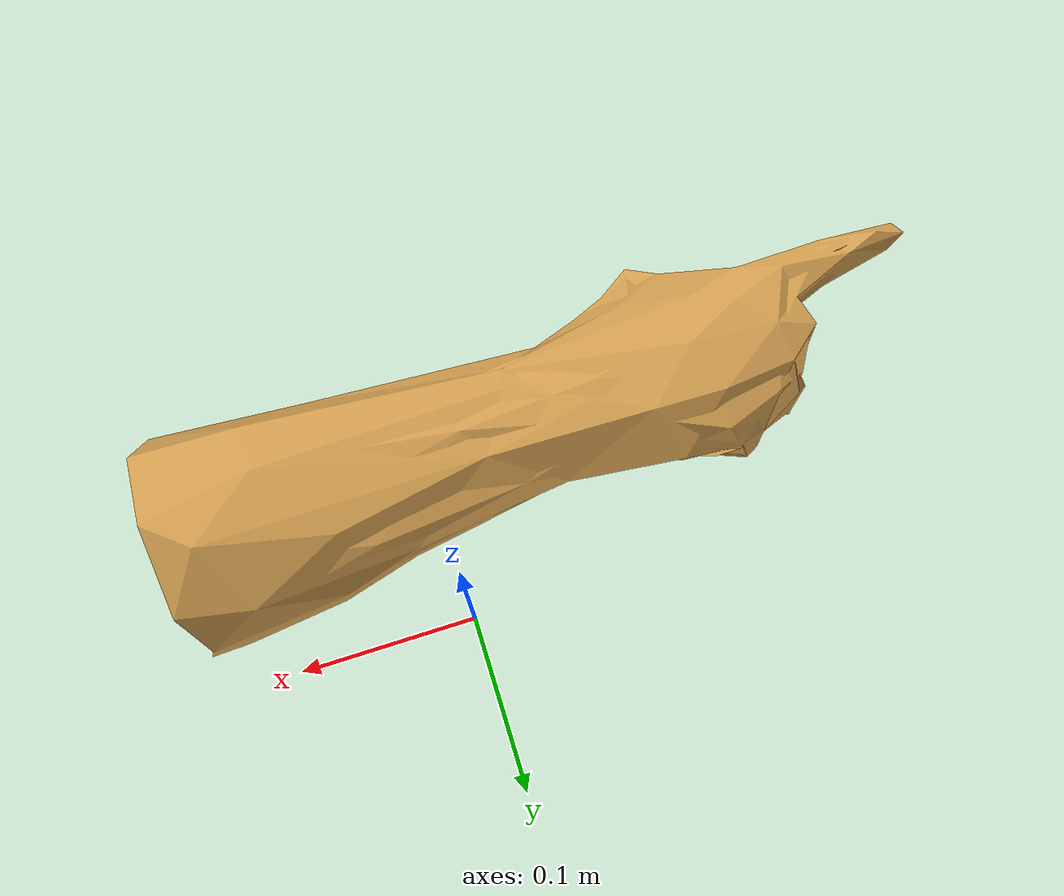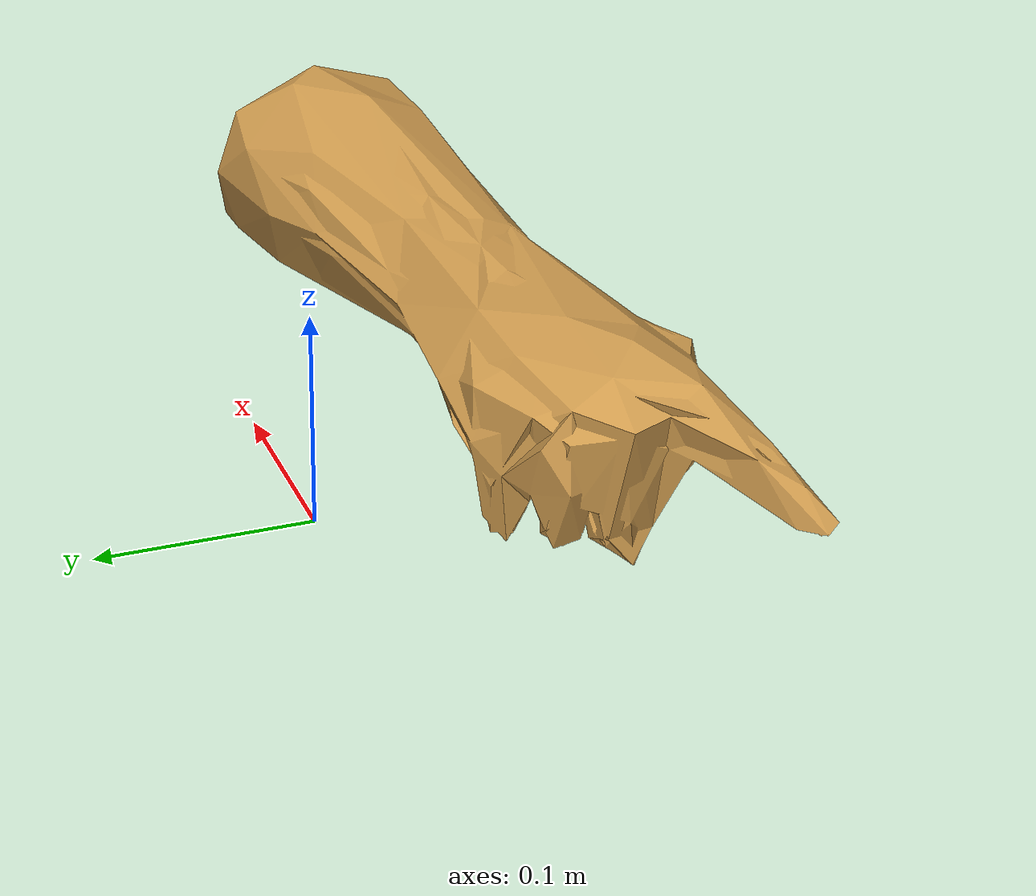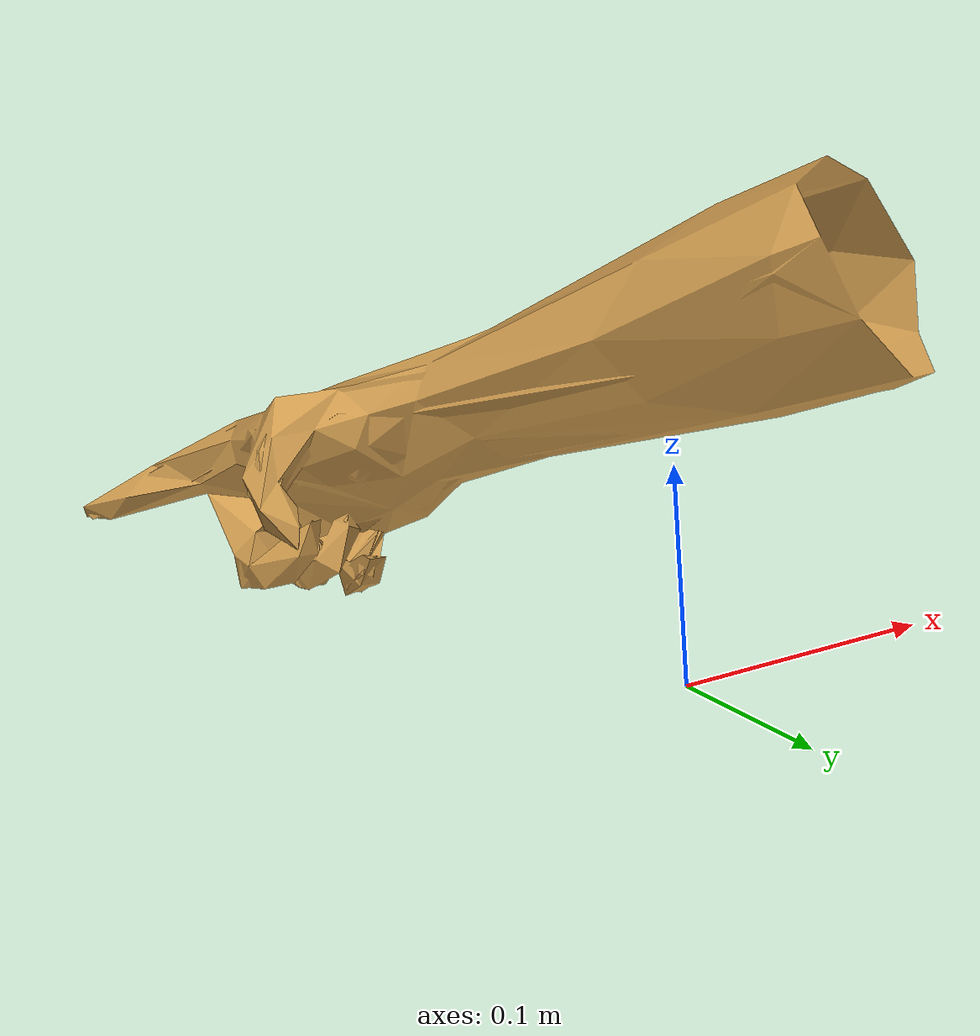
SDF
<?xml version="1.0" ?>
<sdf version="1.5">
  <model name="boxNew">
    <static>true</static>
    <link name="link">
      <gravity>0</gravity>
      <pose>0 0 0.115 0 0 0</pose>
      <inertial>
        <mass>0.390</mass>
        <inertia>
          <ixx>0.00058</ixx>
          <ixy>0</ixy>
          <ixz>0</ixz>
          <iyy>0.00058</iyy>
          <iyz>0</iyz>
          <izz>0.00019</izz>
        </inertia>
      </inertial>
      <collision name="collision">
        <geometry>
            <mesh>
              <uri>/home/stefan/catkin_ws/src/dms_moveit/ur3_moveit/obstacles/hand/hand_low.stl</uri>
              <scale>0.001 0.001 0.001</scale>
          </mesh>
        </geometry>
        <surface>
            <contact>
              <ode>
                <max_vel>0.0001</max_vel>
                <min_depth>0.001</min_depth>
              </ode>
            </contact>
          </surface>
      </collision>
      <visual name="visual">
        <geometry>
          <mesh>
            <uri>/home/stefan/catkin_ws/src/dms_moveit/ur3_moveit/obstacles/hand/hand.stl</uri>
            <scale>0.001 0.001 0.001</scale>
          </mesh>
        </geometry>
        <material>
          <diffuse>0.8 0.6 0.3 1.0</diffuse>
        </material>
      </visual>
    </link>
  </model>
</sdf>
